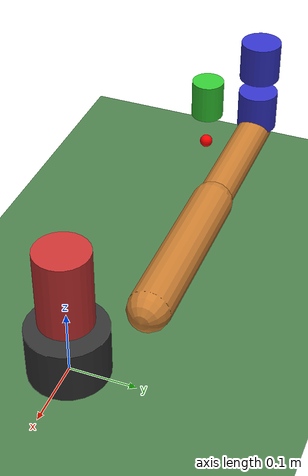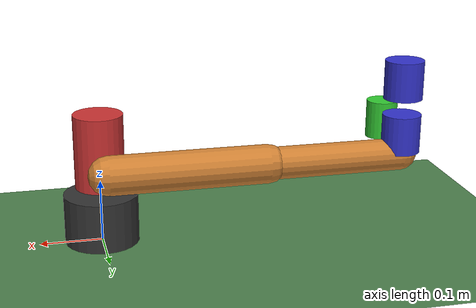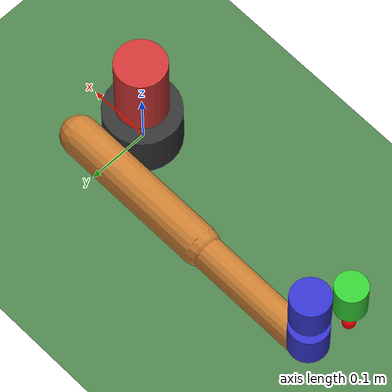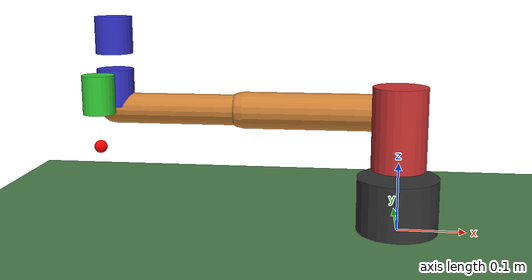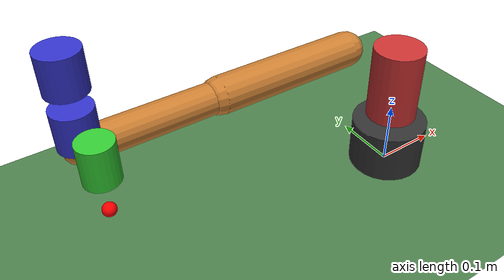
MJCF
<mujoco model="ur3">
  <compiler angle="radian" meshdir="." autolimits="true"/>

  <option gravity="0 0 -9.81" timestep="0.002"/>

  <default>
    <joint limited="true" damping="1.0" armature="0.01"/>
    <geom contype="1" conaffinity="1" rgba="0.7 0.7 0.7 1"/>
    <position kp="500" forcelimited="true" forcerange="-150 150"/>
  </default>

  <worldbody>
    <light pos="0 0 3" dir="0 0 -1" diffuse="0.8 0.8 0.8"/>
    <geom name="floor" type="plane" size="2 2 0.1" pos="0 0 0" rgba="0.3 0.5 0.3 1" contype="1" conaffinity="1"/>

    <body name="base" pos="0 0 0">
      <geom name="base_geom" type="cylinder" size="0.06 0.04" pos="0 0 0.04" rgba="0.2 0.2 0.2 1"/>
      <inertial pos="0 0 0.04" mass="2.0" diaginertia="0.01 0.01 0.01"/>

      <body name="shoulder_link" pos="0 0 0.1519">
        <joint name="shoulder_pan_joint" type="hinge" axis="0 0 1" range="-6.2832 6.2832"/>
        <geom name="shoulder_geom" type="cylinder" size="0.04 0.06" pos="0 0 0" rgba="0.8 0.2 0.2 1"/>
        <inertial pos="0 0 0" mass="2.0" diaginertia="0.01 0.01 0.01"/>

        <body name="upper_arm_link" pos="0 0.1198 0" euler="1.5708 0 0">
          <joint name="shoulder_lift_joint" type="hinge" axis="0 0 1" range="-6.2832 6.2832"/>
          <geom name="upper_arm_geom" type="capsule" size="0.03" fromto="0 0 0 -0.2437 0 0" rgba="0.8 0.5 0.2 1"/>
          <inertial pos="-0.1218 0 0" mass="3.42" diaginertia="0.02 0.02 0.005"/>

          <body name="forearm_link" pos="-0.2437 0 0">
            <joint name="elbow_joint" type="hinge" axis="0 0 1" range="-3.1416 3.1416"/>
            <geom name="forearm_geom" type="capsule" size="0.025" fromto="0 0 0 -0.2132 0 0" rgba="0.8 0.5 0.2 1"/>
            <inertial pos="-0.1066 0 0" mass="1.26" diaginertia="0.01 0.01 0.003"/>

            <body name="wrist_1_link" pos="-0.2132 0.1198 0" euler="1.5708 0 0">
              <joint name="wrist_1_joint" type="hinge" axis="0 0 1" range="-6.2832 6.2832"/>
              <geom name="wrist_1_geom" type="cylinder" size="0.03 0.03" pos="0 0 0" rgba="0.2 0.2 0.8 1"/>
              <inertial pos="0 0 0" mass="0.8" diaginertia="0.005 0.005 0.002"/>

              <body name="wrist_2_link" pos="0 0 0.0850">
                <joint name="wrist_2_joint" type="hinge" axis="0 1 0" range="-6.2832 6.2832"/>
                <geom name="wrist_2_geom" type="cylinder" size="0.03 0.03" pos="0 0 0" rgba="0.2 0.2 0.8 1"/>
                <inertial pos="0 0 0" mass="0.8" diaginertia="0.005 0.005 0.002"/>

                <body name="wrist_3_link" pos="0 0.0820 0">
                  <joint name="wrist_3_joint" type="hinge" axis="0 0 1" range="-6.2832 6.2832"/>
                  <geom name="wrist_3_geom" type="cylinder" size="0.025 0.03" pos="0 0 0" rgba="0.2 0.8 0.2 1"/>
                  <inertial pos="0 0 0" mass="0.35" diaginertia="0.001 0.001 0.001"/>

                  <site name="ee_site" pos="0 0 0.082" euler="0 0 0" size="0.01" rgba="1 0 0 1"/>
                </body>
              </body>
            </body>
          </body>
        </body>
      </body>
    </body>
  </worldbody>

  <actuator>
    <position name="shoulder_pan_act" joint="shoulder_pan_joint" kp="500"/>
    <position name="shoulder_lift_act" joint="shoulder_lift_joint" kp="500"/>
    <position name="elbow_act" joint="elbow_joint" kp="500"/>
    <position name="wrist_1_act" joint="wrist_1_joint" kp="500"/>
    <position name="wrist_2_act" joint="wrist_2_joint" kp="500"/>
    <position name="wrist_3_act" joint="wrist_3_joint" kp="500"/>
  </actuator>
</mujoco>
